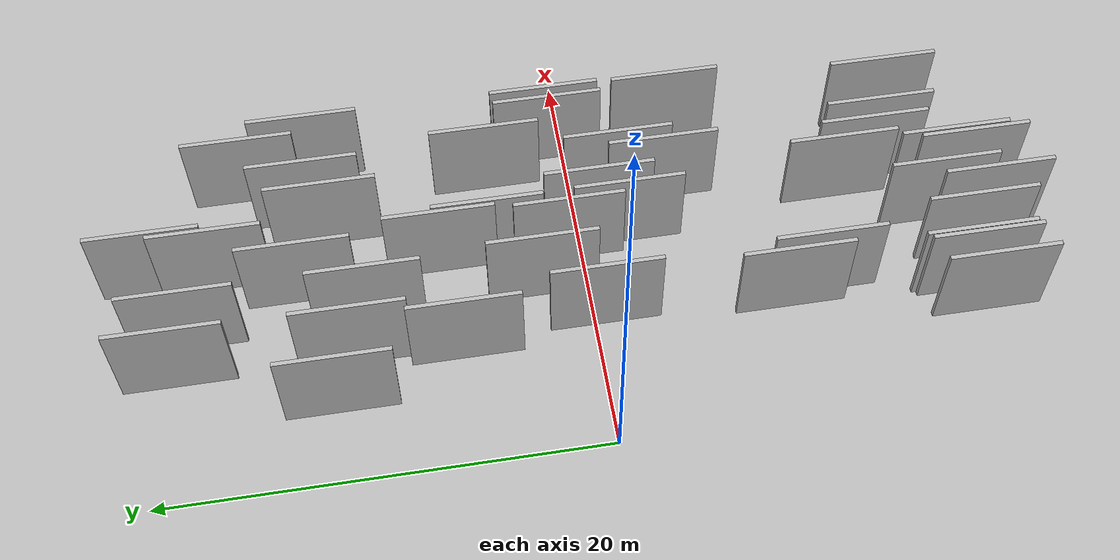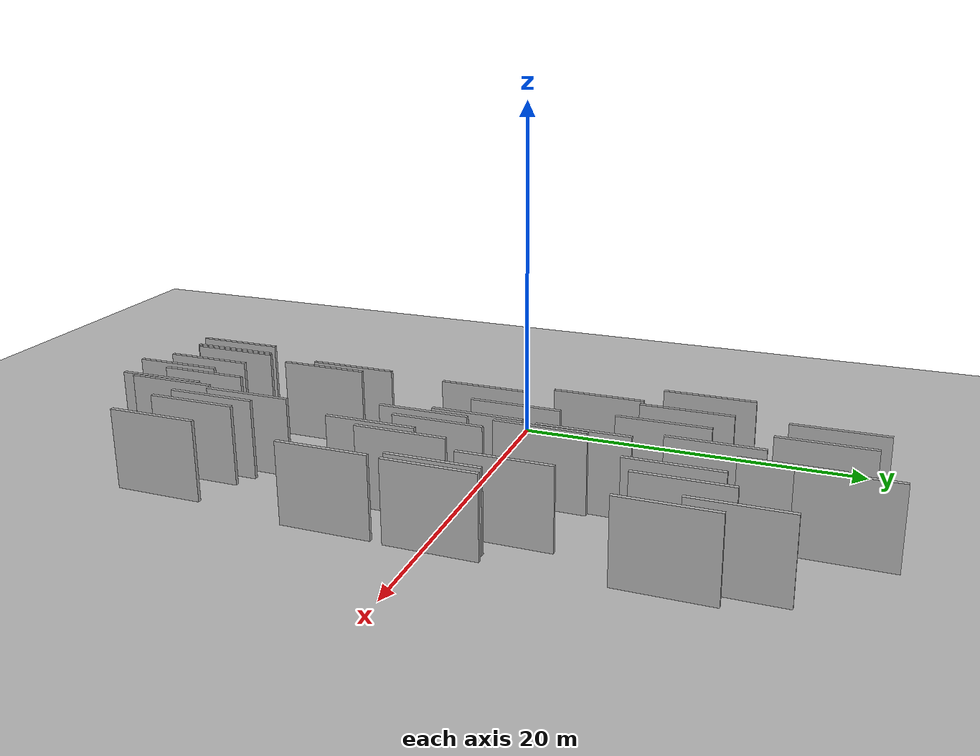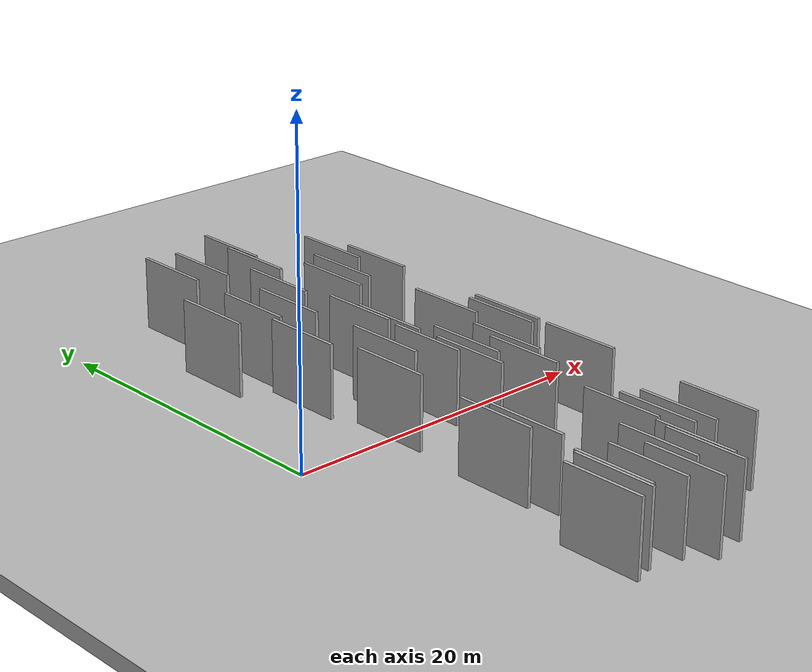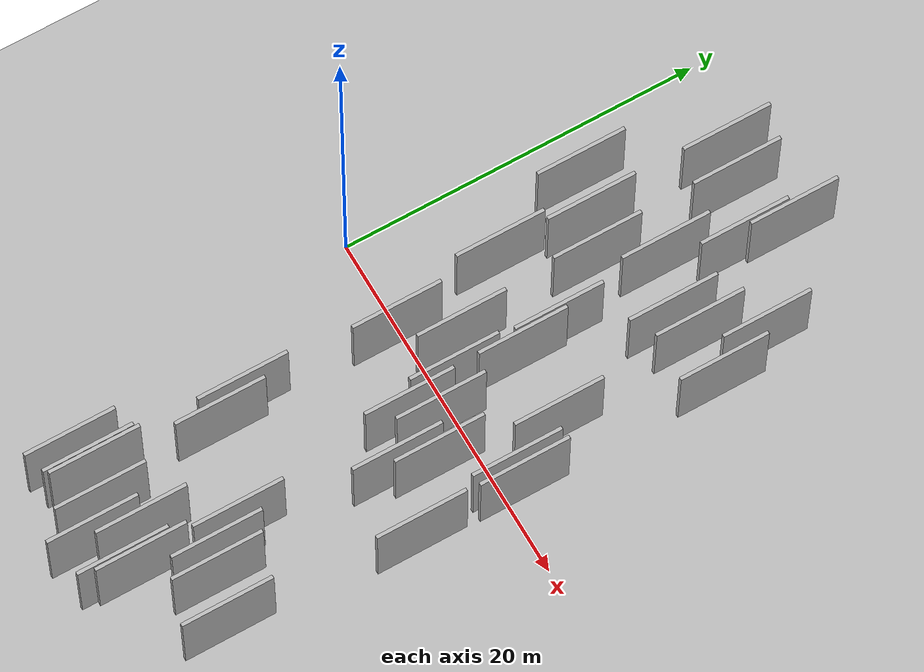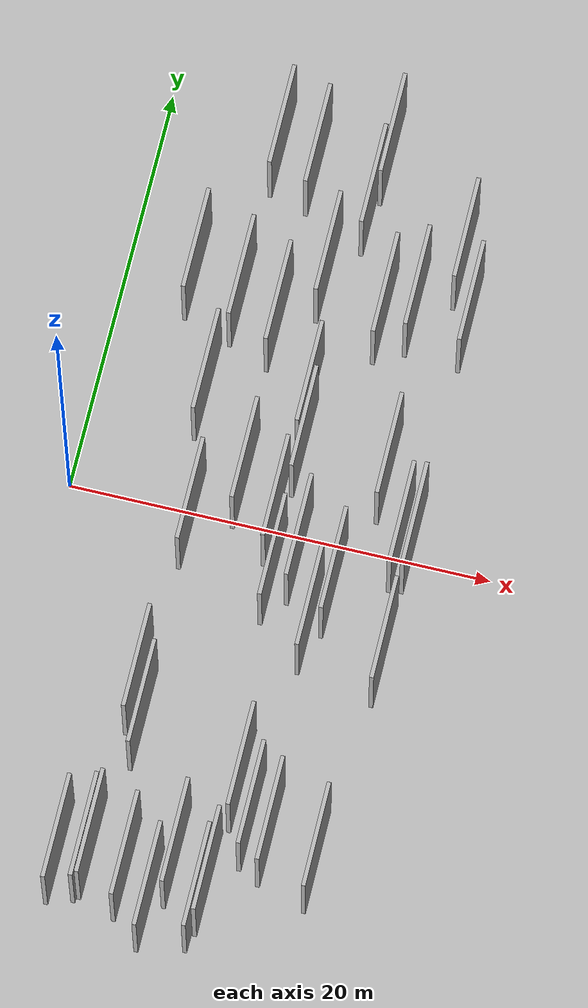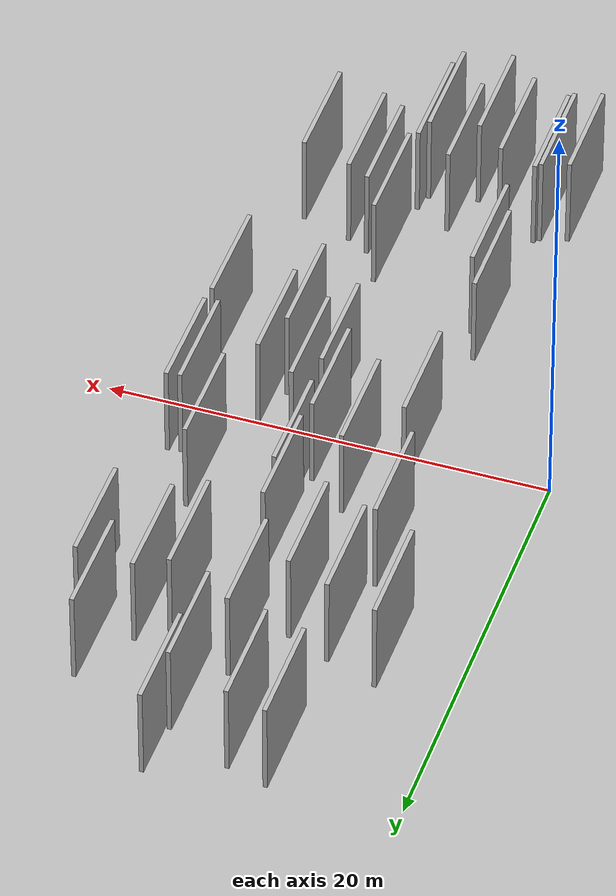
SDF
<?xml version="1.0" encoding="utf-8"?>

<sdf version="1.6">

   <world name="default">

      <gui fullscreen="0">

         <camera name="user_camera">

            <pose>-15 0 4.57585 0 0 0</pose>

            <view_controller>orbit</view_controller>

         </camera>

      </gui>

      <scene>

         <sky>

           <clouds>

             <speed>12</speed>

           </clouds>

         </sky>

         <ambient>0.4 0.4 0.4 1</ambient>

         <background>0.7 0.7 0.7 1</background>

         <shadows>1</shadows>

      </scene>

      <gravity>0 0 -9.8066</gravity>

      <magnetic_field>6e-06 2.3e-05 -4.2e-05</magnetic_field>

      <physics default="0" name="default_physics" type="ode">

         <ode>

            <solver>

               <type>quick</type>

               <iters>10</iters>

               <sor>1.0</sor>

               <use_dynamic_moi_rescaling>0</use_dynamic_moi_rescaling>

            </solver>

            <constraints>

               <cfm>0</cfm>

               <erp>0.2</erp>

               <contact_max_correcting_vel>100</contact_max_correcting_vel>

               <contact_surface_layer>0.001</contact_surface_layer>

            </constraints>

         </ode>

         <max_step_size>0.004</max_step_size>

         <real_time_factor>1</real_time_factor>

         <real_time_update_rate>250</real_time_update_rate>

      </physics>

      <light name="sun" type="directional">

         <cast_shadows>1</cast_shadows>

         <pose>0 0 10 0 0 0</pose>

         <diffuse>0.8 0.8 0.8 1</diffuse>

         <specular>0.2 0.2 0.2 1</specular>

         <attenuation>

            <range>1000</range>

            <constant>0.9</constant>

            <linear>0.01</linear>

            <quadratic>0.001</quadratic>

         </attenuation>

         <direction>-0.5 0.1 -0.9</direction>

      </light>

      <include>

         <name>ground_plane_1</name>

         <uri>model://HANNAS_ground_plane</uri>

         <pose>0 0 0  0 0 0</pose>

      </include>

      <include>

         <name>ground_plane_2</name>

         <uri>model://HANNAS_ground_plane</uri>

         <pose>100 0 0  0 0 0</pose>

      </include>

      <model name="HANNAS_wall_1">

         <static>1</static>

         <pose frame="">7.5048 17.9329 0.0 0.000000 0.000000 1.570796</pose>

         <link name="link">

            <pose frame="">0 0 2.50 0 0 0</pose>

            <collision name="collision">

               <geometry>

                  <box>

                     <size>5.00 0.2 5.00</size>

                  </box>

               </geometry>

               <max_contacts>10</max_contacts>

               <surface>

                  <contact>

                     <ode/>

                  </contact>

                  <bounce/>

                  <friction>

                     <torsional>

                        <ode/>

                     </torsional>

                     <ode/>

                  </friction>

               </surface>

            </collision>

            <visual name="visual">

               <cast_shadows>0</cast_shadows>

               <geometry>

                  <box>

                     <size>5.00 0.2 5.00</size>

                  </box>

               </geometry>

               <material>

                  <script>

                     <uri>model://HANNAS_wall/materials/scripts</uri>

                     <uri>model://HANNAS_wall/materials/textures</uri>

                     <name>vrc/HANNAS_wall</name>

                  </script>

               </material>

            </visual>

            <self_collide>0</self_collide>

            <enable_wind>0</enable_wind>

            <kinematic>0</kinematic>

         </link>

      </model>

      <model name="HANNAS_wall_2">

         <static>1</static>

         <pose frame="">5.9028 -0.4263 0.0 0.000000 0.000000 1.570796</pose>

         <link name="link">

            <pose frame="">0 0 2.50 0 0 0</pose>

            <collision name="collision">

               <geometry>

                  <box>

                     <size>5.00 0.2 5.00</size>

                  </box>

               </geometry>

               <max_contacts>10</max_contacts>

               <surface>

                  <contact>

                     <ode/>

                  </contact>

                  <bounce/>

                  <friction>

                     <torsional>

                        <ode/>

                     </torsional>

                     <ode/>

                  </friction>

               </surface>

            </collision>

            <visual name="visual">

               <cast_shadows>0</cast_shadows>

               <geometry>

                  <box>

                     <size>5.00 0.2 5.00</size>

                  </box>

               </geometry>

               <material>

                  <script>

                     <uri>model://HANNAS_wall/materials/scripts</uri>

                     <uri>model://HANNAS_wall/materials/textures</uri>

                     <name>vrc/HANNAS_wall</name>

                  </script>

               </material>

            </visual>

            <self_collide>0</self_collide>

            <enable_wind>0</enable_wind>

            <kinematic>0</kinematic>

         </link>

      </model>

      <model name="HANNAS_wall_3">

         <static>1</static>

         <pose frame="">9.2255 12.8339 0.0 0.000000 0.000000 1.570796</pose>

         <link name="link">

            <pose frame="">0 0 2.50 0 0 0</pose>

            <collision name="collision">

               <geometry>

                  <box>

                     <size>5.00 0.2 5.00</size>

                  </box>

               </geometry>

               <max_contacts>10</max_contacts>

               <surface>

                  <contact>

                     <ode/>

                  </contact>

                  <bounce/>

                  <friction>

                     <torsional>

                        <ode/>

                     </torsional>

                     <ode/>

                  </friction>

               </surface>

            </collision>

            <visual name="visual">

               <cast_shadows>0</cast_shadows>

               <geometry>

                  <box>

                     <size>5.00 0.2 5.00</size>

                  </box>

               </geometry>

               <material>

                  <script>

                     <uri>model://HANNAS_wall/materials/scripts</uri>

                     <uri>model://HANNAS_wall/materials/textures</uri>

                     <name>vrc/HANNAS_wall</name>

                  </script>

               </material>

            </visual>

            <self_collide>0</self_collide>

            <enable_wind>0</enable_wind>

            <kinematic>0</kinematic>

         </link>

      </model>

      <model name="HANNAS_wall_4">

         <static>1</static>

         <pose frame="">3.2447 11.5406 0.0 0.000000 0.000000 1.570796</pose>

         <link name="link">

            <pose frame="">0 0 2.50 0 0 0</pose>

            <collision name="collision">

               <geometry>

                  <box>

                     <size>5.00 0.2 5.00</size>

                  </box>

               </geometry>

               <max_contacts>10</max_contacts>

               <surface>

                  <contact>

                     <ode/>

                  </contact>

                  <bounce/>

                  <friction>

                     <torsional>

                        <ode/>

                     </torsional>

                     <ode/>

                  </friction>

               </surface>

            </collision>

            <visual name="visual">

               <cast_shadows>0</cast_shadows>

               <geometry>

                  <box>

                     <size>5.00 0.2 5.00</size>

                  </box>

               </geometry>

               <material>

                  <script>

                     <uri>model://HANNAS_wall/materials/scripts</uri>

                     <uri>model://HANNAS_wall/materials/textures</uri>

                     <name>vrc/HANNAS_wall</name>

                  </script>

               </material>

            </visual>

            <self_collide>0</self_collide>

            <enable_wind>0</enable_wind>

            <kinematic>0</kinematic>

         </link>

      </model>

      <model name="HANNAS_wall_5">

         <static>1</static>

         <pose frame="">10.5711 -18.1809 0.0 0.000000 0.000000 1.570796</pose>

         <link name="link">

            <pose frame="">0 0 2.50 0 0 0</pose>

            <collision name="collision">

               <geometry>

                  <box>

                     <size>5.00 0.2 5.00</size>

                  </box>

               </geometry>

               <max_contacts>10</max_contacts>

               <surface>

                  <contact>

                     <ode/>

                  </contact>

                  <bounce/>

                  <friction>

                     <torsional>

                        <ode/>

                     </torsional>

                     <ode/>

                  </friction>

               </surface>

            </collision>

            <visual name="visual">

               <cast_shadows>0</cast_shadows>

               <geometry>

                  <box>

                     <size>5.00 0.2 5.00</size>

                  </box>

               </geometry>

               <material>

                  <script>

                     <uri>model://HANNAS_wall/materials/scripts</uri>

                     <uri>model://HANNAS_wall/materials/textures</uri>

                     <name>vrc/HANNAS_wall</name>

                  </script>

               </material>

            </visual>

            <self_collide>0</self_collide>

            <enable_wind>0</enable_wind>

            <kinematic>0</kinematic>

         </link>

      </model>

      <model name="HANNAS_wall_6">

         <static>1</static>

         <pose frame="">10.1939 -2.1750 0.0 0.000000 0.000000 1.570796</pose>

         <link name="link">

            <pose frame="">0 0 2.50 0 0 0</pose>

            <collision name="collision">

               <geometry>

                  <box>

                     <size>5.00 0.2 5.00</size>

                  </box>

               </geometry>

               <max_contacts>10</max_contacts>

               <surface>

                  <contact>

                     <ode/>

                  </contact>

                  <bounce/>

                  <friction>

                     <torsional>

                        <ode/>

                     </torsional>

                     <ode/>

                  </friction>

               </surface>

            </collision>

            <visual name="visual">

               <cast_shadows>0</cast_shadows>

               <geometry>

                  <box>

                     <size>5.00 0.2 5.00</size>

                  </box>

               </geometry>

               <material>

                  <script>

                     <uri>model://HANNAS_wall/materials/scripts</uri>

                     <uri>model://HANNAS_wall/materials/textures</uri>

                     <name>vrc/HANNAS_wall</name>

                  </script>

               </material>

            </visual>

            <self_collide>0</self_collide>

            <enable_wind>0</enable_wind>

            <kinematic>0</kinematic>

         </link>

      </model>

      <model name="HANNAS_wall_7">

         <static>1</static>

         <pose frame="">9.8791 6.3956 0.0 0.000000 0.000000 1.570796</pose>

         <link name="link">

            <pose frame="">0 0 2.50 0 0 0</pose>

            <collision name="collision">

               <geometry>

                  <box>

                     <size>5.00 0.2 5.00</size>

                  </box>

               </geometry>

               <max_contacts>10</max_contacts>

               <surface>

                  <contact>

                     <ode/>

                  </contact>

                  <bounce/>

                  <friction>

                     <torsional>

                        <ode/>

                     </torsional>

                     <ode/>

                  </friction>

               </surface>

            </collision>

            <visual name="visual">

               <cast_shadows>0</cast_shadows>

               <geometry>

                  <box>

                     <size>5.00 0.2 5.00</size>

                  </box>

               </geometry>

               <material>

                  <script>

                     <uri>model://HANNAS_wall/materials/scripts</uri>

                     <uri>model://HANNAS_wall/materials/textures</uri>

                     <name>vrc/HANNAS_wall</name>

                  </script>

               </material>

            </visual>

            <self_collide>0</self_collide>

            <enable_wind>0</enable_wind>

            <kinematic>0</kinematic>

         </link>

      </model>

      <model name="HANNAS_wall_8">

         <static>1</static>

         <pose frame="">16.2139 11.9730 0.0 0.000000 0.000000 1.570796</pose>

         <link name="link">

            <pose frame="">0 0 2.50 0 0 0</pose>

            <collision name="collision">

               <geometry>

                  <box>

                     <size>5.00 0.2 5.00</size>

                  </box>

               </geometry>

               <max_contacts>10</max_contacts>

               <surface>

                  <contact>

                     <ode/>

                  </contact>

                  <bounce/>

                  <friction>

                     <torsional>

                        <ode/>

                     </torsional>

                     <ode/>

                  </friction>

               </surface>

            </collision>

            <visual name="visual">

               <cast_shadows>0</cast_shadows>

               <geometry>

                  <box>

                     <size>5.00 0.2 5.00</size>

                  </box>

               </geometry>

               <material>

                  <script>

                     <uri>model://HANNAS_wall/materials/scripts</uri>

                     <uri>model://HANNAS_wall/materials/textures</uri>

                     <name>vrc/HANNAS_wall</name>

                  </script>

               </material>

            </visual>

            <self_collide>0</self_collide>

            <enable_wind>0</enable_wind>

            <kinematic>0</kinematic>

         </link>

      </model>

      <model name="HANNAS_wall_9">

         <static>1</static>

         <pose frame="">9.1282 -16.3875 0.0 0.000000 0.000000 1.570796</pose>

         <link name="link">

            <pose frame="">0 0 2.50 0 0 0</pose>

            <collision name="collision">

               <geometry>

                  <box>

                     <size>5.00 0.2 5.00</size>

                  </box>

               </geometry>

               <max_contacts>10</max_contacts>

               <surface>

                  <contact>

                     <ode/>

                  </contact>

                  <bounce/>

                  <friction>

                     <torsional>

                        <ode/>

                     </torsional>

                     <ode/>

                  </friction>

               </surface>

            </collision>

            <visual name="visual">

               <cast_shadows>0</cast_shadows>

               <geometry>

                  <box>

                     <size>5.00 0.2 5.00</size>

                  </box>

               </geometry>

               <material>

                  <script>

                     <uri>model://HANNAS_wall/materials/scripts</uri>

                     <uri>model://HANNAS_wall/materials/textures</uri>

                     <name>vrc/HANNAS_wall</name>

                  </script>

               </material>

            </visual>

            <self_collide>0</self_collide>

            <enable_wind>0</enable_wind>

            <kinematic>0</kinematic>

         </link>

      </model>

      <model name="HANNAS_wall_10">

         <static>1</static>

         <pose frame="">16.0700 -4.8649 0.0 0.000000 0.000000 1.570796</pose>

         <link name="link">

            <pose frame="">0 0 2.50 0 0 0</pose>

            <collision name="collision">

               <geometry>

                  <box>

                     <size>5.00 0.2 5.00</size>

                  </box>

               </geometry>

               <max_contacts>10</max_contacts>

               <surface>

                  <contact>

                     <ode/>

                  </contact>

                  <bounce/>

                  <friction>

                     <torsional>

                        <ode/>

                     </torsional>

                     <ode/>

                  </friction>

               </surface>

            </collision>

            <visual name="visual">

               <cast_shadows>0</cast_shadows>

               <geometry>

                  <box>

                     <size>5.00 0.2 5.00</size>

                  </box>

               </geometry>

               <material>

                  <script>

                     <uri>model://HANNAS_wall/materials/scripts</uri>

                     <uri>model://HANNAS_wall/materials/textures</uri>

                     <name>vrc/HANNAS_wall</name>

                  </script>

               </material>

            </visual>

            <self_collide>0</self_collide>

            <enable_wind>0</enable_wind>

            <kinematic>0</kinematic>

         </link>

      </model>

      <model name="HANNAS_wall_11">

         <static>1</static>

         <pose frame="">13.6249 12.1517 0.0 0.000000 0.000000 1.570796</pose>

         <link name="link">

            <pose frame="">0 0 2.50 0 0 0</pose>

            <collision name="collision">

               <geometry>

                  <box>

                     <size>5.00 0.2 5.00</size>

                  </box>

               </geometry>

               <max_contacts>10</max_contacts>

               <surface>

                  <contact>

                     <ode/>

                  </contact>

                  <bounce/>

                  <friction>

                     <torsional>

                        <ode/>

                     </torsional>

                     <ode/>

                  </friction>

               </surface>

            </collision>

            <visual name="visual">

               <cast_shadows>0</cast_shadows>

               <geometry>

                  <box>

                     <size>5.00 0.2 5.00</size>

                  </box>

               </geometry>

               <material>

                  <script>

                     <uri>model://HANNAS_wall/materials/scripts</uri>

                     <uri>model://HANNAS_wall/materials/textures</uri>

                     <name>vrc/HANNAS_wall</name>

                  </script>

               </material>

            </visual>

            <self_collide>0</self_collide>

            <enable_wind>0</enable_wind>

            <kinematic>0</kinematic>

         </link>

      </model>

      <model name="HANNAS_wall_12">

         <static>1</static>

         <pose frame="">14.2593 3.8317 0.0 0.000000 0.000000 1.570796</pose>

         <link name="link">

            <pose frame="">0 0 2.50 0 0 0</pose>

            <collision name="collision">

               <geometry>

                  <box>

                     <size>5.00 0.2 5.00</size>

                  </box>

               </geometry>

               <max_contacts>10</max_contacts>

               <surface>

                  <contact>

                     <ode/>

                  </contact>

                  <bounce/>

                  <friction>

                     <torsional>

                        <ode/>

                     </torsional>

                     <ode/>

                  </friction>

               </surface>

            </collision>

            <visual name="visual">

               <cast_shadows>0</cast_shadows>

               <geometry>

                  <box>

                     <size>5.00 0.2 5.00</size>

                  </box>

               </geometry>

               <material>

                  <script>

                     <uri>model://HANNAS_wall/materials/scripts</uri>

                     <uri>model://HANNAS_wall/materials/textures</uri>

                     <name>vrc/HANNAS_wall</name>

                  </script>

               </material>

            </visual>

            <self_collide>0</self_collide>

            <enable_wind>0</enable_wind>

            <kinematic>0</kinematic>

         </link>

      </model>

      <model name="HANNAS_wall_13">

         <static>1</static>

         <pose frame="">7.5498 9.9339 0.0 0.000000 0.000000 1.570796</pose>

         <link name="link">

            <pose frame="">0 0 2.50 0 0 0</pose>

            <collision name="collision">

               <geometry>

                  <box>

                     <size>5.00 0.2 5.00</size>

                  </box>

               </geometry>

               <max_contacts>10</max_contacts>

               <surface>

                  <contact>

                     <ode/>

                  </contact>

                  <bounce/>

                  <friction>

                     <torsional>

                        <ode/>

                     </torsional>

                     <ode/>

                  </friction>

               </surface>

            </collision>

            <visual name="visual">

               <cast_shadows>0</cast_shadows>

               <geometry>

                  <box>

                     <size>5.00 0.2 5.00</size>

                  </box>

               </geometry>

               <material>

                  <script>

                     <uri>model://HANNAS_wall/materials/scripts</uri>

                     <uri>model://HANNAS_wall/materials/textures</uri>

                     <name>vrc/HANNAS_wall</name>

                  </script>

               </material>

            </visual>

            <self_collide>0</self_collide>

            <enable_wind>0</enable_wind>

            <kinematic>0</kinematic>

         </link>

      </model>

      <model name="HANNAS_wall_14">

         <static>1</static>

         <pose frame="">9.6706 0.6236 0.0 0.000000 0.000000 1.570796</pose>

         <link name="link">

            <pose frame="">0 0 2.50 0 0 0</pose>

            <collision name="collision">

               <geometry>

                  <box>

                     <size>5.00 0.2 5.00</size>

                  </box>

               </geometry>

               <max_contacts>10</max_contacts>

               <surface>

                  <contact>

                     <ode/>

                  </contact>

                  <bounce/>

                  <friction>

                     <torsional>

                        <ode/>

                     </torsional>

                     <ode/>

                  </friction>

               </surface>

            </collision>

            <visual name="visual">

               <cast_shadows>0</cast_shadows>

               <geometry>

                  <box>

                     <size>5.00 0.2 5.00</size>

                  </box>

               </geometry>

               <material>

                  <script>

                     <uri>model://HANNAS_wall/materials/scripts</uri>

                     <uri>model://HANNAS_wall/materials/textures</uri>

                     <name>vrc/HANNAS_wall</name>

                  </script>

               </material>

            </visual>

            <self_collide>0</self_collide>

            <enable_wind>0</enable_wind>

            <kinematic>0</kinematic>

         </link>

      </model>

      <model name="HANNAS_wall_15">

         <static>1</static>

         <pose frame="">5.4642 -8.7777 0.0 0.000000 0.000000 1.570796</pose>

         <link name="link">

            <pose frame="">0 0 2.50 0 0 0</pose>

            <collision name="collision">

               <geometry>

                  <box>

                     <size>5.00 0.2 5.00</size>

                  </box>

               </geometry>

               <max_contacts>10</max_contacts>

               <surface>

                  <contact>

                     <ode/>

                  </contact>

                  <bounce/>

                  <friction>

                     <torsional>

                        <ode/>

                     </torsional>

                     <ode/>

                  </friction>

               </surface>

            </collision>

            <visual name="visual">

               <cast_shadows>0</cast_shadows>

               <geometry>

                  <box>

                     <size>5.00 0.2 5.00</size>

                  </box>

               </geometry>

               <material>

                  <script>

                     <uri>model://HANNAS_wall/materials/scripts</uri>

                     <uri>model://HANNAS_wall/materials/textures</uri>

                     <name>vrc/HANNAS_wall</name>

                  </script>

               </material>

            </visual>

            <self_collide>0</self_collide>

            <enable_wind>0</enable_wind>

            <kinematic>0</kinematic>

         </link>

      </model>

      <model name="HANNAS_wall_16">

         <static>1</static>

         <pose frame="">15.2874 14.9542 0.0 0.000000 0.000000 1.570796</pose>

         <link name="link">

            <pose frame="">0 0 2.50 0 0 0</pose>

            <collision name="collision">

               <geometry>

                  <box>

                     <size>5.00 0.2 5.00</size>

                  </box>

               </geometry>

               <max_contacts>10</max_contacts>

               <surface>

                  <contact>

                     <ode/>

                  </contact>

                  <bounce/>

                  <friction>

                     <torsional>

                        <ode/>

                     </torsional>

                     <ode/>

                  </friction>

               </surface>

            </collision>

            <visual name="visual">

               <cast_shadows>0</cast_shadows>

               <geometry>

                  <box>

                     <size>5.00 0.2 5.00</size>

                  </box>

               </geometry>

               <material>

                  <script>

                     <uri>model://HANNAS_wall/materials/scripts</uri>

                     <uri>model://HANNAS_wall/materials/textures</uri>

                     <name>vrc/HANNAS_wall</name>

                  </script>

               </material>

            </visual>

            <self_collide>0</self_collide>

            <enable_wind>0</enable_wind>

            <kinematic>0</kinematic>

         </link>

      </model>

      <model name="HANNAS_wall_17">

         <static>1</static>

         <pose frame="">13.0476 -14.3991 0.0 0.000000 0.000000 1.570796</pose>

         <link name="link">

            <pose frame="">0 0 2.50 0 0 0</pose>

            <collision name="collision">

               <geometry>

                  <box>

                     <size>5.00 0.2 5.00</size>

                  </box>

               </geometry>

               <max_contacts>10</max_contacts>

               <surface>

                  <contact>

                     <ode/>

                  </contact>

                  <bounce/>

                  <friction>

                     <torsional>

                        <ode/>

                     </torsional>

                     <ode/>

                  </friction>

               </surface>

            </collision>

            <visual name="visual">

               <cast_shadows>0</cast_shadows>

               <geometry>

                  <box>

                     <size>5.00 0.2 5.00</size>

                  </box>

               </geometry>

               <material>

                  <script>

                     <uri>model://HANNAS_wall/materials/scripts</uri>

                     <uri>model://HANNAS_wall/materials/textures</uri>

                     <name>vrc/HANNAS_wall</name>

                  </script>

               </material>

            </visual>

            <self_collide>0</self_collide>

            <enable_wind>0</enable_wind>

            <kinematic>0</kinematic>

         </link>

      </model>

      <model name="HANNAS_wall_18">

         <static>1</static>

         <pose frame="">11.1627 -12.2000 0.0 0.000000 0.000000 1.570796</pose>

         <link name="link">

            <pose frame="">0 0 2.50 0 0 0</pose>

            <collision name="collision">

               <geometry>

                  <box>

                     <size>5.00 0.2 5.00</size>

                  </box>

               </geometry>

               <max_contacts>10</max_contacts>

               <surface>

                  <contact>

                     <ode/>

                  </contact>

                  <bounce/>

                  <friction>

                     <torsional>

                        <ode/>

                     </torsional>

                     <ode/>

                  </friction>

               </surface>

            </collision>

            <visual name="visual">

               <cast_shadows>0</cast_shadows>

               <geometry>

                  <box>

                     <size>5.00 0.2 5.00</size>

                  </box>

               </geometry>

               <material>

                  <script>

                     <uri>model://HANNAS_wall/materials/scripts</uri>

                     <uri>model://HANNAS_wall/materials/textures</uri>

                     <name>vrc/HANNAS_wall</name>

                  </script>

               </material>

            </visual>

            <self_collide>0</self_collide>

            <enable_wind>0</enable_wind>

            <kinematic>0</kinematic>

         </link>

      </model>

      <model name="HANNAS_wall_19">

         <static>1</static>

         <pose frame="">3.8867 -17.4439 0.0 0.000000 0.000000 1.570796</pose>

         <link name="link">

            <pose frame="">0 0 2.50 0 0 0</pose>

            <collision name="collision">

               <geometry>

                  <box>

                     <size>5.00 0.2 5.00</size>

                  </box>

               </geometry>

               <max_contacts>10</max_contacts>

               <surface>

                  <contact>

                     <ode/>

                  </contact>

                  <bounce/>

                  <friction>

                     <torsional>

                        <ode/>

                     </torsional>

                     <ode/>

                  </friction>

               </surface>

            </collision>

            <visual name="visual">

               <cast_shadows>0</cast_shadows>

               <geometry>

                  <box>

                     <size>5.00 0.2 5.00</size>

                  </box>

               </geometry>

               <material>

                  <script>

                     <uri>model://HANNAS_wall/materials/scripts</uri>

                     <uri>model://HANNAS_wall/materials/textures</uri>

                     <name>vrc/HANNAS_wall</name>

                  </script>

               </material>

            </visual>

            <self_collide>0</self_collide>

            <enable_wind>0</enable_wind>

            <kinematic>0</kinematic>

         </link>

      </model>

      <model name="HANNAS_wall_20">

         <static>1</static>

         <pose frame="">16.1581 0.8074 0.0 0.000000 0.000000 1.570796</pose>

         <link name="link">

            <pose frame="">0 0 2.50 0 0 0</pose>

            <collision name="collision">

               <geometry>

                  <box>

                     <size>5.00 0.2 5.00</size>

                  </box>

               </geometry>

               <max_contacts>10</max_contacts>

               <surface>

                  <contact>

                     <ode/>

                  </contact>

                  <bounce/>

                  <friction>

                     <torsional>

                        <ode/>

                     </torsional>

                     <ode/>

                  </friction>

               </surface>

            </collision>

            <visual name="visual">

               <cast_shadows>0</cast_shadows>

               <geometry>

                  <box>

                     <size>5.00 0.2 5.00</size>

                  </box>

               </geometry>

               <material>

                  <script>

                     <uri>model://HANNAS_wall/materials/scripts</uri>

                     <uri>model://HANNAS_wall/materials/textures</uri>

                     <name>vrc/HANNAS_wall</name>

                  </script>

               </material>

            </visual>

            <self_collide>0</self_collide>

            <enable_wind>0</enable_wind>

            <kinematic>0</kinematic>

         </link>

      </model>

      <model name="HANNAS_wall_21">

         <static>1</static>

         <pose frame="">5.1016 5.8637 0.0 0.000000 0.000000 1.570796</pose>

         <link name="link">

            <pose frame="">0 0 2.50 0 0 0</pose>

            <collision name="collision">

               <geometry>

                  <box>

                     <size>5.00 0.2 5.00</size>

                  </box>

               </geometry>

               <max_contacts>10</max_contacts>

               <surface>

                  <contact>

                     <ode/>

                  </contact>

                  <bounce/>

                  <friction>

                     <torsional>

                        <ode/>

                     </torsional>

                     <ode/>

                  </friction>

               </surface>

            </collision>

            <visual name="visual">

               <cast_shadows>0</cast_shadows>

               <geometry>

                  <box>

                     <size>5.00 0.2 5.00</size>

                  </box>

               </geometry>

               <material>

                  <script>

                     <uri>model://HANNAS_wall/materials/scripts</uri>

                     <uri>model://HANNAS_wall/materials/textures</uri>

                     <name>vrc/HANNAS_wall</name>

                  </script>

               </material>

            </visual>

            <self_collide>0</self_collide>

            <enable_wind>0</enable_wind>

            <kinematic>0</kinematic>

         </link>

      </model>

      <model name="HANNAS_wall_22">

         <static>1</static>

         <pose frame="">12.4100 -4.1178 0.0 0.000000 0.000000 1.570796</pose>

         <link name="link">

            <pose frame="">0 0 2.50 0 0 0</pose>

            <collision name="collision">

               <geometry>

                  <box>

                     <size>5.00 0.2 5.00</size>

                  </box>

               </geometry>

               <max_contacts>10</max_contacts>

               <surface>

                  <contact>

                     <ode/>

                  </contact>

                  <bounce/>

                  <friction>

                     <torsional>

                        <ode/>

                     </torsional>

                     <ode/>

                  </friction>

               </surface>

            </collision>

            <visual name="visual">

               <cast_shadows>0</cast_shadows>

               <geometry>

                  <box>

                     <size>5.00 0.2 5.00</size>

                  </box>

               </geometry>

               <material>

                  <script>

                     <uri>model://HANNAS_wall/materials/scripts</uri>

                     <uri>model://HANNAS_wall/materials/textures</uri>

                     <name>vrc/HANNAS_wall</name>

                  </script>

               </material>

            </visual>

            <self_collide>0</self_collide>

            <enable_wind>0</enable_wind>

            <kinematic>0</kinematic>

         </link>

      </model>

      <model name="HANNAS_wall_23">

         <static>1</static>

         <pose frame="">6.0732 -10.3672 0.0 0.000000 0.000000 1.570796</pose>

         <link name="link">

            <pose frame="">0 0 2.50 0 0 0</pose>

            <collision name="collision">

               <geometry>

                  <box>

                     <size>5.00 0.2 5.00</size>

                  </box>

               </geometry>

               <max_contacts>10</max_contacts>

               <surface>

                  <contact>

                     <ode/>

                  </contact>

                  <bounce/>

                  <friction>

                     <torsional>

                        <ode/>

                     </torsional>

                     <ode/>

                  </friction>

               </surface>

            </collision>

            <visual name="visual">

               <cast_shadows>0</cast_shadows>

               <geometry>

                  <box>

                     <size>5.00 0.2 5.00</size>

                  </box>

               </geometry>

               <material>

                  <script>

                     <uri>model://HANNAS_wall/materials/scripts</uri>

                     <uri>model://HANNAS_wall/materials/textures</uri>

                     <name>vrc/HANNAS_wall</name>

                  </script>

               </material>

            </visual>

            <self_collide>0</self_collide>

            <enable_wind>0</enable_wind>

            <kinematic>0</kinematic>

         </link>

      </model>

      <model name="HANNAS_wall_24">

         <static>1</static>

         <pose frame="">8.4093 -18.6599 0.0 0.000000 0.000000 1.570796</pose>

         <link name="link">

            <pose frame="">0 0 2.50 0 0 0</pose>

            <collision name="collision">

               <geometry>

                  <box>

                     <size>5.00 0.2 5.00</size>

                  </box>

               </geometry>

               <max_contacts>10</max_contacts>

               <surface>

                  <contact>

                     <ode/>

                  </contact>

                  <bounce/>

                  <friction>

                     <torsional>

                        <ode/>

                     </torsional>

                     <ode/>

                  </friction>

               </surface>

            </collision>

            <visual name="visual">

               <cast_shadows>0</cast_shadows>

               <geometry>

                  <box>

                     <size>5.00 0.2 5.00</size>

                  </box>

               </geometry>

               <material>

                  <script>

                     <uri>model://HANNAS_wall/materials/scripts</uri>

                     <uri>model://HANNAS_wall/materials/textures</uri>

                     <name>vrc/HANNAS_wall</name>

                  </script>

               </material>

            </visual>

            <self_collide>0</self_collide>

            <enable_wind>0</enable_wind>

            <kinematic>0</kinematic>

         </link>

      </model>

      <model name="HANNAS_wall_25">

         <static>1</static>

         <pose frame="">7.8541 2.0817 0.0 0.000000 0.000000 1.570796</pose>

         <link name="link">

            <pose frame="">0 0 2.50 0 0 0</pose>

            <collision name="collision">

               <geometry>

                  <box>

                     <size>5.00 0.2 5.00</size>

                  </box>

               </geometry>

               <max_contacts>10</max_contacts>

               <surface>

                  <contact>

                     <ode/>

                  </contact>

                  <bounce/>

                  <friction>

                     <torsional>

                        <ode/>

                     </torsional>

                     <ode/>

                  </friction>

               </surface>

            </collision>

            <visual name="visual">

               <cast_shadows>0</cast_shadows>

               <geometry>

                  <box>

                     <size>5.00 0.2 5.00</size>

                  </box>

               </geometry>

               <material>

                  <script>

                     <uri>model://HANNAS_wall/materials/scripts</uri>

                     <uri>model://HANNAS_wall/materials/textures</uri>

                     <name>vrc/HANNAS_wall</name>

                  </script>

               </material>

            </visual>

            <self_collide>0</self_collide>

            <enable_wind>0</enable_wind>

            <kinematic>0</kinematic>

         </link>

      </model>

      <model name="HANNAS_wall_26">

         <static>1</static>

         <pose frame="">10.8182 -17.3274 0.0 0.000000 0.000000 1.570796</pose>

         <link name="link">

            <pose frame="">0 0 2.50 0 0 0</pose>

            <collision name="collision">

               <geometry>

                  <box>

                     <size>5.00 0.2 5.00</size>

                  </box>

               </geometry>

               <max_contacts>10</max_contacts>

               <surface>

                  <contact>

                     <ode/>

                  </contact>

                  <bounce/>

                  <friction>

                     <torsional>

                        <ode/>

                     </torsional>

                     <ode/>

                  </friction>

               </surface>

            </collision>

            <visual name="visual">

               <cast_shadows>0</cast_shadows>

               <geometry>

                  <box>

                     <size>5.00 0.2 5.00</size>

                  </box>

               </geometry>

               <material>

                  <script>

                     <uri>model://HANNAS_wall/materials/scripts</uri>

                     <uri>model://HANNAS_wall/materials/textures</uri>

                     <name>vrc/HANNAS_wall</name>

                  </script>

               </material>

            </visual>

            <self_collide>0</self_collide>

            <enable_wind>0</enable_wind>

            <kinematic>0</kinematic>

         </link>

      </model>

      <model name="HANNAS_wall_27">

         <static>1</static>

         <pose frame="">11.1472 -0.9657 0.0 0.000000 0.000000 1.570796</pose>

         <link name="link">

            <pose frame="">0 0 2.50 0 0 0</pose>

            <collision name="collision">

               <geometry>

                  <box>

                     <size>5.00 0.2 5.00</size>

                  </box>

               </geometry>

               <max_contacts>10</max_contacts>

               <surface>

                  <contact>

                     <ode/>

                  </contact>

                  <bounce/>

                  <friction>

                     <torsional>

                        <ode/>

                     </torsional>

                     <ode/>

                  </friction>

               </surface>

            </collision>

            <visual name="visual">

               <cast_shadows>0</cast_shadows>

               <geometry>

                  <box>

                     <size>5.00 0.2 5.00</size>

                  </box>

               </geometry>

               <material>

                  <script>

                     <uri>model://HANNAS_wall/materials/scripts</uri>

                     <uri>model://HANNAS_wall/materials/textures</uri>

                     <name>vrc/HANNAS_wall</name>

                  </script>

               </material>

            </visual>

            <self_collide>0</self_collide>

            <enable_wind>0</enable_wind>

            <kinematic>0</kinematic>

         </link>

      </model>

      <model name="HANNAS_wall_28">

         <static>1</static>

         <pose frame="">12.2671 11.4439 0.0 0.000000 0.000000 1.570796</pose>

         <link name="link">

            <pose frame="">0 0 2.50 0 0 0</pose>

            <collision name="collision">

               <geometry>

                  <box>

                     <size>5.00 0.2 5.00</size>

                  </box>

               </geometry>

               <max_contacts>10</max_contacts>

               <surface>

                  <contact>

                     <ode/>

                  </contact>

                  <bounce/>

                  <friction>

                     <torsional>

                        <ode/>

                     </torsional>

                     <ode/>

                  </friction>

               </surface>

            </collision>

            <visual name="visual">

               <cast_shadows>0</cast_shadows>

               <geometry>

                  <box>

                     <size>5.00 0.2 5.00</size>

                  </box>

               </geometry>

               <material>

                  <script>

                     <uri>model://HANNAS_wall/materials/scripts</uri>

                     <uri>model://HANNAS_wall/materials/textures</uri>

                     <name>vrc/HANNAS_wall</name>

                  </script>

               </material>

            </visual>

            <self_collide>0</self_collide>

            <enable_wind>0</enable_wind>

            <kinematic>0</kinematic>

         </link>

      </model>

      <model name="HANNAS_wall_29">

         <static>1</static>

         <pose frame="">5.6604 18.4603 0.0 0.000000 0.000000 1.570796</pose>

         <link name="link">

            <pose frame="">0 0 2.50 0 0 0</pose>

            <collision name="collision">

               <geometry>

                  <box>

                     <size>5.00 0.2 5.00</size>

                  </box>

               </geometry>

               <max_contacts>10</max_contacts>

               <surface>

                  <contact>

                     <ode/>

                  </contact>

                  <bounce/>

                  <friction>

                     <torsional>

                        <ode/>

                     </torsional>

                     <ode/>

                  </friction>

               </surface>

            </collision>

            <visual name="visual">

               <cast_shadows>0</cast_shadows>

               <geometry>

                  <box>

                     <size>5.00 0.2 5.00</size>

                  </box>

               </geometry>

               <material>

                  <script>

                     <uri>model://HANNAS_wall/materials/scripts</uri>

                     <uri>model://HANNAS_wall/materials/textures</uri>

                     <name>vrc/HANNAS_wall</name>

                  </script>

               </material>

            </visual>

            <self_collide>0</self_collide>

            <enable_wind>0</enable_wind>

            <kinematic>0</kinematic>

         </link>

      </model>

      <model name="HANNAS_wall_30">

         <static>1</static>

         <pose frame="">10.4909 16.5807 0.0 0.000000 0.000000 1.570796</pose>

         <link name="link">

            <pose frame="">0 0 2.50 0 0 0</pose>

            <collision name="collision">

               <geometry>

                  <box>

                     <size>5.00 0.2 5.00</size>

                  </box>

               </geometry>

               <max_contacts>10</max_contacts>

               <surface>

                  <contact>

                     <ode/>

                  </contact>

                  <bounce/>

                  <friction>

                     <torsional>

                        <ode/>

                     </torsional>

                     <ode/>

                  </friction>

               </surface>

            </collision>

            <visual name="visual">

               <cast_shadows>0</cast_shadows>

               <geometry>

                  <box>

                     <size>5.00 0.2 5.00</size>

                  </box>

               </geometry>

               <material>

                  <script>

                     <uri>model://HANNAS_wall/materials/scripts</uri>

                     <uri>model://HANNAS_wall/materials/textures</uri>

                     <name>vrc/HANNAS_wall</name>

                  </script>

               </material>

            </visual>

            <self_collide>0</self_collide>

            <enable_wind>0</enable_wind>

            <kinematic>0</kinematic>

         </link>

      </model>

      <model name="HANNAS_wall_31">

         <static>1</static>

         <pose frame="">12.0393 -13.8612 0.0 0.000000 0.000000 1.570796</pose>

         <link name="link">

            <pose frame="">0 0 2.50 0 0 0</pose>

            <collision name="collision">

               <geometry>

                  <box>

                     <size>5.00 0.2 5.00</size>

                  </box>

               </geometry>

               <max_contacts>10</max_contacts>

               <surface>

                  <contact>

                     <ode/>

                  </contact>

                  <bounce/>

                  <friction>

                     <torsional>

                        <ode/>

                     </torsional>

                     <ode/>

                  </friction>

               </surface>

            </collision>

            <visual name="visual">

               <cast_shadows>0</cast_shadows>

               <geometry>

                  <box>

                     <size>5.00 0.2 5.00</size>

                  </box>

               </geometry>

               <material>

                  <script>

                     <uri>model://HANNAS_wall/materials/scripts</uri>

                     <uri>model://HANNAS_wall/materials/textures</uri>

                     <name>vrc/HANNAS_wall</name>

                  </script>

               </material>

            </visual>

            <self_collide>0</self_collide>

            <enable_wind>0</enable_wind>

            <kinematic>0</kinematic>

         </link>

      </model>

      <model name="HANNAS_wall_32">

         <static>1</static>

         <pose frame="">5.0674 -17.0747 0.0 0.000000 0.000000 1.570796</pose>

         <link name="link">

            <pose frame="">0 0 2.50 0 0 0</pose>

            <collision name="collision">

               <geometry>

                  <box>

                     <size>5.00 0.2 5.00</size>

                  </box>

               </geometry>

               <max_contacts>10</max_contacts>

               <surface>

                  <contact>

                     <ode/>

                  </contact>

                  <bounce/>

                  <friction>

                     <torsional>

                        <ode/>

                     </torsional>

                     <ode/>

                  </friction>

               </surface>

            </collision>

            <visual name="visual">

               <cast_shadows>0</cast_shadows>

               <geometry>

                  <box>

                     <size>5.00 0.2 5.00</size>

                  </box>

               </geometry>

               <material>

                  <script>

                     <uri>model://HANNAS_wall/materials/scripts</uri>

                     <uri>model://HANNAS_wall/materials/textures</uri>

                     <name>vrc/HANNAS_wall</name>

                  </script>

               </material>

            </visual>

            <self_collide>0</self_collide>

            <enable_wind>0</enable_wind>

            <kinematic>0</kinematic>

         </link>

      </model>

      <model name="HANNAS_wall_33">

         <static>1</static>

         <pose frame="">10.7677 19.2513 0.0 0.000000 0.000000 1.570796</pose>

         <link name="link">

            <pose frame="">0 0 2.50 0 0 0</pose>

            <collision name="collision">

               <geometry>

                  <box>

                     <size>5.00 0.2 5.00</size>

                  </box>

               </geometry>

               <max_contacts>10</max_contacts>

               <surface>

                  <contact>

                     <ode/>

                  </contact>

                  <bounce/>

                  <friction>

                     <torsional>

                        <ode/>

                     </torsional>

                     <ode/>

                  </friction>

               </surface>

            </collision>

            <visual name="visual">

               <cast_shadows>0</cast_shadows>

               <geometry>

                  <box>

                     <size>5.00 0.2 5.00</size>

                  </box>

               </geometry>

               <material>

                  <script>

                     <uri>model://HANNAS_wall/materials/scripts</uri>

                     <uri>model://HANNAS_wall/materials/textures</uri>

                     <name>vrc/HANNAS_wall</name>

                  </script>

               </material>

            </visual>

            <self_collide>0</self_collide>

            <enable_wind>0</enable_wind>

            <kinematic>0</kinematic>

         </link>

      </model>

      <model name="HANNAS_wall_34">

         <static>1</static>

         <pose frame="">5.2914 -16.8604 0.0 0.000000 0.000000 1.570796</pose>

         <link name="link">

            <pose frame="">0 0 2.50 0 0 0</pose>

            <collision name="collision">

               <geometry>

                  <box>

                     <size>5.00 0.2 5.00</size>

                  </box>

               </geometry>

               <max_contacts>10</max_contacts>

               <surface>

                  <contact>

                     <ode/>

                  </contact>

                  <bounce/>

                  <friction>

                     <torsional>

                        <ode/>

                     </torsional>

                     <ode/>

                  </friction>

               </surface>

            </collision>

            <visual name="visual">

               <cast_shadows>0</cast_shadows>

               <geometry>

                  <box>

                     <size>5.00 0.2 5.00</size>

                  </box>

               </geometry>

               <material>

                  <script>

                     <uri>model://HANNAS_wall/materials/scripts</uri>

                     <uri>model://HANNAS_wall/materials/textures</uri>

                     <name>vrc/HANNAS_wall</name>

                  </script>

               </material>

            </visual>

            <self_collide>0</self_collide>

            <enable_wind>0</enable_wind>

            <kinematic>0</kinematic>

         </link>

      </model>

      <model name="HANNAS_wall_35">

         <static>1</static>

         <pose frame="">13.0576 -2.1494 0.0 0.000000 0.000000 1.570796</pose>

         <link name="link">

            <pose frame="">0 0 2.50 0 0 0</pose>

            <collision name="collision">

               <geometry>

                  <box>

                     <size>5.00 0.2 5.00</size>

                  </box>

               </geometry>

               <max_contacts>10</max_contacts>

               <surface>

                  <contact>

                     <ode/>

                  </contact>

                  <bounce/>

                  <friction>

                     <torsional>

                        <ode/>

                     </torsional>

                     <ode/>

                  </friction>

               </surface>

            </collision>

            <visual name="visual">

               <cast_shadows>0</cast_shadows>

               <geometry>

                  <box>

                     <size>5.00 0.2 5.00</size>

                  </box>

               </geometry>

               <material>

                  <script>

                     <uri>model://HANNAS_wall/materials/scripts</uri>

                     <uri>model://HANNAS_wall/materials/textures</uri>

                     <name>vrc/HANNAS_wall</name>

                  </script>

               </material>

            </visual>

            <self_collide>0</self_collide>

            <enable_wind>0</enable_wind>

            <kinematic>0</kinematic>

         </link>

      </model>

      <model name="HANNAS_wall_36">

         <static>1</static>

         <pose frame="">10.1417 4.2057 0.0 0.000000 0.000000 1.570796</pose>

         <link name="link">

            <pose frame="">0 0 2.50 0 0 0</pose>

            <collision name="collision">

               <geometry>

                  <box>

                     <size>5.00 0.2 5.00</size>

                  </box>

               </geometry>

               <max_contacts>10</max_contacts>

               <surface>

                  <contact>

                     <ode/>

                  </contact>

                  <bounce/>

                  <friction>

                     <torsional>

                        <ode/>

                     </torsional>

                     <ode/>

                  </friction>

               </surface>

            </collision>

            <visual name="visual">

               <cast_shadows>0</cast_shadows>

               <geometry>

                  <box>

                     <size>5.00 0.2 5.00</size>

                  </box>

               </geometry>

               <material>

                  <script>

                     <uri>model://HANNAS_wall/materials/scripts</uri>

                     <uri>model://HANNAS_wall/materials/textures</uri>

                     <name>vrc/HANNAS_wall</name>

                  </script>

               </material>

            </visual>

            <self_collide>0</self_collide>

            <enable_wind>0</enable_wind>

            <kinematic>0</kinematic>

         </link>

      </model>

      <model name="HANNAS_wall_37">

         <static>1</static>

         <pose frame="">15.3630 -15.1234 0.0 0.000000 0.000000 1.570796</pose>

         <link name="link">

            <pose frame="">0 0 2.50 0 0 0</pose>

            <collision name="collision">

               <geometry>

                  <box>

                     <size>5.00 0.2 5.00</size>

                  </box>

               </geometry>

               <max_contacts>10</max_contacts>

               <surface>

                  <contact>

                     <ode/>

                  </contact>

                  <bounce/>

                  <friction>

                     <torsional>

                        <ode/>

                     </torsional>

                     <ode/>

                  </friction>

               </surface>

            </collision>

            <visual name="visual">

               <cast_shadows>0</cast_shadows>

               <geometry>

                  <box>

                     <size>5.00 0.2 5.00</size>

                  </box>

               </geometry>

               <material>

                  <script>

                     <uri>model://HANNAS_wall/materials/scripts</uri>

                     <uri>model://HANNAS_wall/materials/textures</uri>

                     <name>vrc/HANNAS_wall</name>

                  </script>

               </material>

            </visual>

            <self_collide>0</self_collide>

            <enable_wind>0</enable_wind>

            <kinematic>0</kinematic>

         </link>

      </model>

      <model name="HANNAS_wall_38">

         <static>1</static>

         <pose frame="">7.0636 -17.5063 0.0 0.000000 0.000000 1.570796</pose>

         <link name="link">

            <pose frame="">0 0 2.50 0 0 0</pose>

            <collision name="collision">

               <geometry>

                  <box>

                     <size>5.00 0.2 5.00</size>

                  </box>

               </geometry>

               <max_contacts>10</max_contacts>

               <surface>

                  <contact>

                     <ode/>

                  </contact>

                  <bounce/>

                  <friction>

                     <torsional>

                        <ode/>

                     </torsional>

                     <ode/>

                  </friction>

               </surface>

            </collision>

            <visual name="visual">

               <cast_shadows>0</cast_shadows>

               <geometry>

                  <box>

                     <size>5.00 0.2 5.00</size>

                  </box>

               </geometry>

               <material>

                  <script>

                     <uri>model://HANNAS_wall/materials/scripts</uri>

                     <uri>model://HANNAS_wall/materials/textures</uri>

                     <name>vrc/HANNAS_wall</name>

                  </script>

               </material>

            </visual>

            <self_collide>0</self_collide>

            <enable_wind>0</enable_wind>

            <kinematic>0</kinematic>

         </link>

      </model>

      <model name="HANNAS_wall_39">

         <static>1</static>

         <pose frame="">5.5912 10.7471 0.0 0.000000 0.000000 1.570796</pose>

         <link name="link">

            <pose frame="">0 0 2.50 0 0 0</pose>

            <collision name="collision">

               <geometry>

                  <box>

                     <size>5.00 0.2 5.00</size>

                  </box>

               </geometry>

               <max_contacts>10</max_contacts>

               <surface>

                  <contact>

                     <ode/>

                  </contact>

                  <bounce/>

                  <friction>

                     <torsional>

                        <ode/>

                     </torsional>

                     <ode/>

                  </friction>

               </surface>

            </collision>

            <visual name="visual">

               <cast_shadows>0</cast_shadows>

               <geometry>

                  <box>

                     <size>5.00 0.2 5.00</size>

                  </box>

               </geometry>

               <material>

                  <script>

                     <uri>model://HANNAS_wall/materials/scripts</uri>

                     <uri>model://HANNAS_wall/materials/textures</uri>

                     <name>vrc/HANNAS_wall</name>

                  </script>

               </material>

            </visual>

            <self_collide>0</self_collide>

            <enable_wind>0</enable_wind>

            <kinematic>0</kinematic>

         </link>

      </model>

      <model name="HANNAS_wall_40">

         <static>1</static>

         <pose frame="">15.5675 0.7309 0.0 0.000000 0.000000 1.570796</pose>

         <link name="link">

            <pose frame="">0 0 2.50 0 0 0</pose>

            <collision name="collision">

               <geometry>

                  <box>

                     <size>5.00 0.2 5.00</size>

                  </box>

               </geometry>

               <max_contacts>10</max_contacts>

               <surface>

                  <contact>

                     <ode/>

                  </contact>

                  <bounce/>

                  <friction>

                     <torsional>

                        <ode/>

                     </torsional>

                     <ode/>

                  </friction>

               </surface>

            </collision>

            <visual name="visual">

               <cast_shadows>0</cast_shadows>

               <geometry>

                  <box>

                     <size>5.00 0.2 5.00</size>

                  </box>

               </geometry>

               <material>

                  <script>

                     <uri>model://HANNAS_wall/materials/scripts</uri>

                     <uri>model://HANNAS_wall/materials/textures</uri>

                     <name>vrc/HANNAS_wall</name>

                  </script>

               </material>

            </visual>

            <self_collide>0</self_collide>

            <enable_wind>0</enable_wind>

            <kinematic>0</kinematic>

         </link>

      </model>

   </world>

</sdf>
